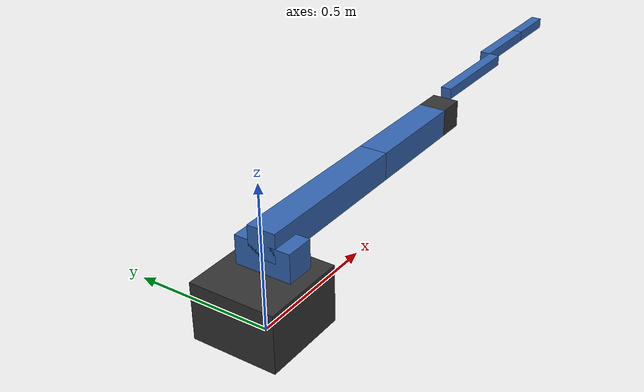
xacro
<?xml version="1.0"?>

<robot xmlns:xacro="http://www.ros.org/wiki/xacro" name="r7bot">
  <!-- Import -->
  <xacro:include filename="$(find r7bot)/xacro/r7bot_description.xacro"/>
  <xacro:include filename="$(find r7bot)/xacro/r7bot_ros2_control.xacro" />

  <!-- Use macros -->
  <xacro:r7bot_description/>
  <xacro:r7bot_ros2_control/>

</robot>

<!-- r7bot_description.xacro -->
<robot xmlns:xacro="http://www.ros.org/wiki/xacro">

<xacro:macro name="r7bot_description">

  <!-- helper macro -->
  <xacro:macro name="create_body" params="number parent wdith length a d alpha rgb">
    <link name="link${number}">
      <visual>
        <origin xyz="${length/2} 0 0" rpy="0 0 0"/>
        <geometry>
          <box size="${length} ${wdith} ${wdith}"/>
        </geometry>
        <material name="">
          <color rgba="${rgb} 1.0"/>
        </material>
      </visual>
      <collision>
        <origin xyz="${length/2} 0 0" rpy="0 0 0"/>
        <geometry>
          <box size="${length} ${wdith} ${wdith}"/>
        </geometry>
      </collision>
      <inertial>
        <mass value="1"/>
        <inertia ixx="1.0" ixy="0.0" ixz="0.0" iyy="1.0" iyz="0.0" izz="1.0"/>
      </inertial>
    </link>

    <joint name="joint${number}" type="revolute">
      <parent link="${parent}"/>
      <child link="link${number}"/>
      <origin xyz="${a} 0 ${d}" rpy="${alpha} 0 0"/>
      <axis xyz="0 0 1"/>
      <limit upper="${pi}" lower="${-pi}" effort="100" velocity="1.0"/>
    </joint>
  </xacro:macro>

  <!-- model -->
  <link name="base_link">
    <visual>
      <origin xyz="0 0 0.1" rpy="0 0 0"/>
      <geometry>
        <box size="0.3 0.3 0.2"/>
      </geometry>
      <material name="">
        <color rgba="0.2 0.2 0.2 1.0"/>
      </material>
    </visual>
    <collision>
      <origin xyz="0 0 0.1" rpy="0 0 0"/>
      <geometry>
        <box size="0.1 0.1 0.1"/>
      </geometry>
    </collision>
  </link>

  <xacro:create_body number="1" parent="base_link" wdith="0.2"  length="0.1" a="0.0"  d="0.2"  alpha="0.0"     rgb="0.2 0.4 0.7"/>
  <xacro:create_body number="2" parent="link1"     wdith="0.1"  length="0.6" a="0.0"  d="0.1"  alpha="${pi/2}" rgb="0.2 0.4 0.7"/>
  <xacro:create_body number="3" parent="link2"     wdith="0.1"  length="0.4" a="0.6"  d="0.0"  alpha="0.0"     rgb="0.2 0.4 0.7"/>
  <xacro:create_body number="4" parent="link3"     wdith="0.1"  length="0.1" a="0.4"  d="0.0"  alpha="${pi/2}" rgb="0.2 0.2 0.2"/>
  <xacro:create_body number="5" parent="link4"     wdith="0.04" length="0.4" a="0.1" d="-0.07" alpha="${pi/2}" rgb="0.2 0.4 0.7"/>
  <xacro:create_body number="6" parent="link5"     wdith="0.04" length="0.3" a="0.4"  d="0.04" alpha="${pi/2}" rgb="0.2 0.4 0.7"/>
  <xacro:create_body number="7" parent="link6"     wdith="0.04" length="0.2" a="0.3"  d="0.0"  alpha="${pi/2}" rgb="0.2 0.4 0.7"/>

  <link name="flange"/>
  <joint name="flange_pin" type="fixed">
    <parent link="link7"/>
    <child link="flange"/>
    <origin xyz="0.2 0 0" rpy="0 0 0"/>
  </joint>

</xacro:macro>

</robot>
